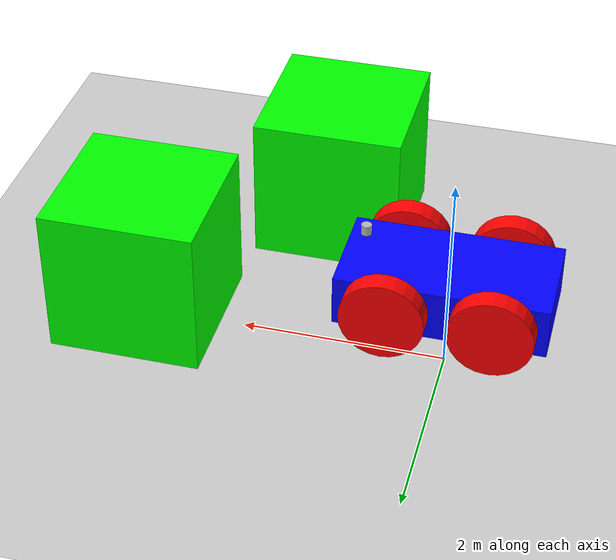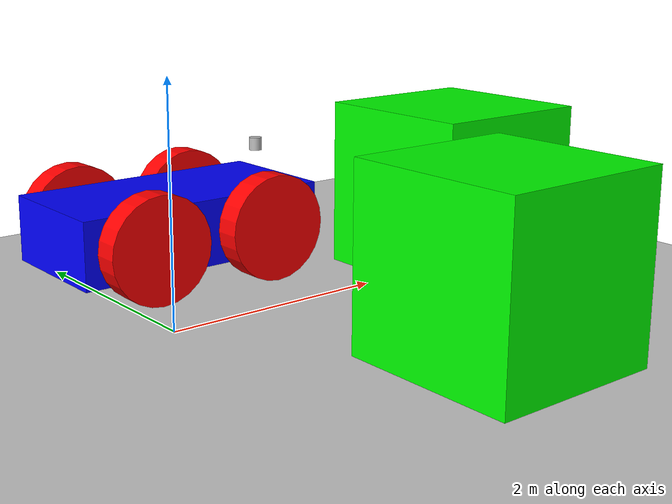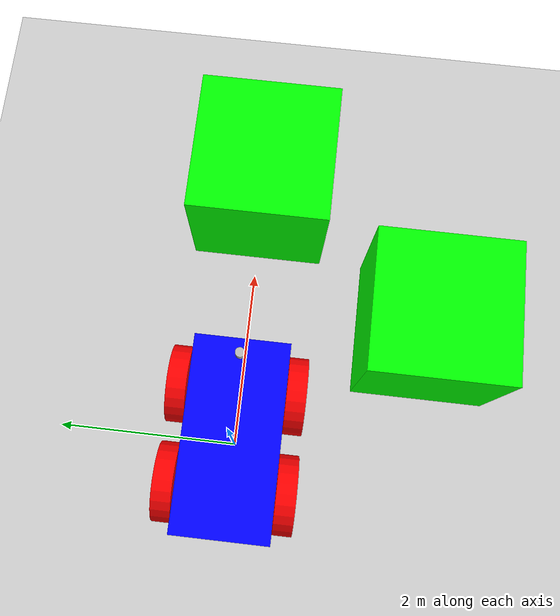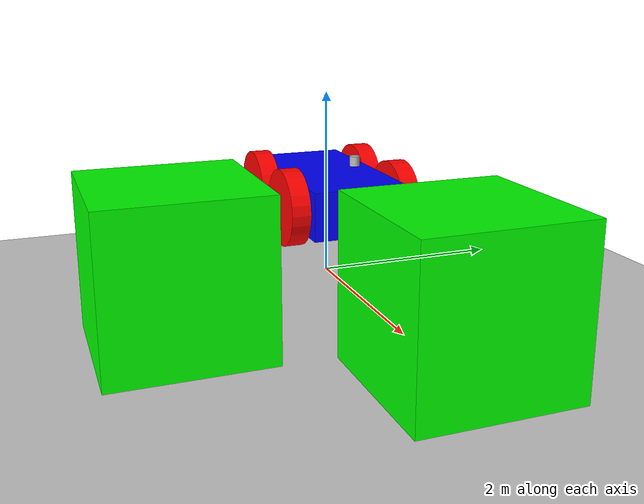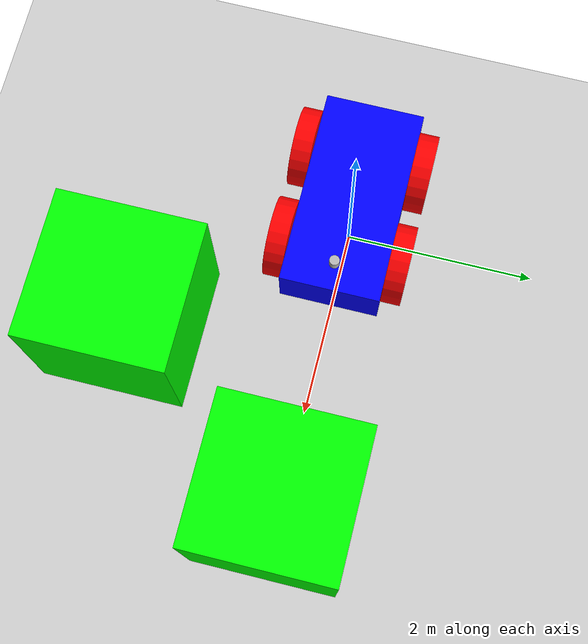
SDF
<?xml version="1.0" ?>
<sdf version="1.8">
    <world name="car_world">
        <physics name="1ms" type="ignored">
            <max_step_size>0.001</max_step_size>
            <real_time_factor>1.0</real_time_factor>
        </physics>
        <plugin filename="gz-sim-physics-system" name="gz::sim::systems::Physics"/>
        <plugin filename="gz-sim-user-commands-system" name="gz::sim::systems::UserCommands"/>
        <plugin filename="gz-sim-scene-broadcaster-system" name="gz::sim::systems::SceneBroadcaster"/>
        <plugin filename="gz-sim-sensors-system" name="gz::sim::systems::Sensors">
            <render_engine>ogre2</render_engine>
        </plugin>

        <light type="directional" name="sun">
            <cast_shadows>true</cast_shadows>
            <pose>0 0 10 0 0 0</pose>
            <diffuse>0.8 0.8 0.8 1</diffuse>
            <specular>0.2 0.2 0.2 1</specular>
            <direction>-0.5 0.1 -0.9</direction>
        </light>

        <model name="ground_plane">
            <static>true</static>
            <link name="link">
                <collision name="collision">
                    <geometry><plane><normal>0 0 1</normal></plane></geometry>
                </collision>
                <visual name="visual">
                    <geometry><plane><normal>0 0 1</normal><size>100 100</size></plane></geometry>
                    <material><ambient>0.8 0.8 0.8 1</ambient><diffuse>0.8 0.8 0.8 1</diffuse></material>
                </visual>
            </link>
        </model>

        <model name='robot_4wd' canonical_link='chassis'>
            <pose relative_to='world'>0 0 0.5 0 0 0</pose>

            <link name='chassis'>
                <pose relative_to='__model__'>0 0 0.4 0 0 0</pose>
                <inertial>
                    <mass>1.14395</mass>
                    <inertia>
                        <ixx>0.095329</ixx><iyy>0.381317</iyy><izz>0.476646</izz>
                    </inertia>
                </inertial>
                <visual name='visual'>
                    <geometry><box><size>2.0 1.0 0.5</size></box></geometry>
                    <material><ambient>0.0 0.0 1.0 1</ambient><diffuse>0.0 0.0 1.0 1</diffuse></material>
                </visual>
                <collision name='collision'>
                    <geometry><box><size>2.0 1.0 0.5</size></box></geometry>
                </collision>
            </link>

            <link name='left_front_wheel'>
                <pose relative_to="chassis">0.5 0.6 0 -1.5707 0 0</pose>
                <inertial>
                    <mass>1</mass>
                    <inertia><ixx>0.043333</ixx><iyy>0.043333</iyy><izz>0.08</izz></inertia>
                </inertial>
                <visual name='visual'>
                    <geometry><cylinder><radius>0.4</radius><length>0.2</length></cylinder></geometry>
                    <material><ambient>1.0 0.0 0.0 1</ambient><diffuse>1.0 0.0 0.0 1</diffuse></material>
                </visual>
                <collision name='collision'>
                    <geometry><cylinder><radius>0.4</radius><length>0.2</length></cylinder></geometry>
                </collision>
            </link>

            <link name='right_front_wheel'>
                <pose relative_to="chassis">0.5 -0.6 0 -1.5707 0 0</pose>
                <inertial>
                    <mass>1</mass>
                    <inertia><ixx>0.043333</ixx><iyy>0.043333</iyy><izz>0.08</izz></inertia>
                </inertial>
                <visual name='visual'>
                    <geometry><cylinder><radius>0.4</radius><length>0.2</length></cylinder></geometry>
                    <material><ambient>1.0 0.0 0.0 1</ambient><diffuse>1.0 0.0 0.0 1</diffuse></material>
                </visual>
                <collision name='collision'>
                    <geometry><cylinder><radius>0.4</radius><length>0.2</length></cylinder></geometry>
                </collision>
            </link>

            <link name='left_rear_wheel'>
                <pose relative_to="chassis">-0.5 0.6 0 -1.5707 0 0</pose>
                <inertial>
                    <mass>1</mass>
                    <inertia><ixx>0.043333</ixx><iyy>0.043333</iyy><izz>0.08</izz></inertia>
                </inertial>
                <visual name='visual'>
                    <geometry><cylinder><radius>0.4</radius><length>0.2</length></cylinder></geometry>
                    <material><ambient>1.0 0.0 0.0 1</ambient><diffuse>1.0 0.0 0.0 1</diffuse></material>
                </visual>
                <collision name='collision'>
                    <geometry><cylinder><radius>0.4</radius><length>0.2</length></cylinder></geometry>
                </collision>
            </link>

            <link name='right_rear_wheel'>
                <pose relative_to="chassis">-0.5 -0.6 0 -1.5707 0 0</pose>
                <inertial>
                    <mass>1</mass>
                    <inertia><ixx>0.043333</ixx><iyy>0.043333</iyy><izz>0.08</izz></inertia>
                </inertial>
                <visual name='visual'>
                    <geometry><cylinder><radius>0.4</radius><length>0.2</length></cylinder></geometry>
                    <material><ambient>1.0 0.0 0.0 1</ambient><diffuse>1.0 0.0 0.0 1</diffuse></material>
                </visual>
                <collision name='collision'>
                    <geometry><cylinder><radius>0.4</radius><length>0.2</length></cylinder></geometry>
                </collision>
            </link>

            <joint name='left_front_wheel_joint' type='revolute'>
                <pose relative_to='left_front_wheel'/>
                <parent>chassis</parent><child>left_front_wheel</child>
                <axis><xyz expressed_in='__model__'>0 1 0</xyz><limit><lower>-1.79e+308</lower><upper>1.79e+308</upper></limit></axis>
            </joint>

            <joint name='right_front_wheel_joint' type='revolute'>
                <pose relative_to='right_front_wheel'/>
                <parent>chassis</parent><child>right_front_wheel</child>
                <axis><xyz expressed_in='__model__'>0 1 0</xyz><limit><lower>-1.79e+308</lower><upper>1.79e+308</upper></limit></axis>
            </joint>

            <joint name='left_rear_wheel_joint' type='revolute'>
                <pose relative_to='left_rear_wheel'/>
                <parent>chassis</parent><child>left_rear_wheel</child>
                <axis><xyz expressed_in='__model__'>0 1 0</xyz><limit><lower>-1.79e+308</lower><upper>1.79e+308</upper></limit></axis>
            </joint>

            <joint name='right_rear_wheel_joint' type='revolute'>
                <pose relative_to='right_rear_wheel'/>
                <parent>chassis</parent><child>right_rear_wheel</child>
                <axis><xyz expressed_in='__model__'>0 1 0</xyz><limit><lower>-1.79e+308</lower><upper>1.79e+308</upper></limit></axis>
            </joint>

            <link name='lidar_link'>
                <pose relative_to='chassis'>0.8 0 0.5 0 0 0</pose>
                <inertial>
                    <mass>0.1</mass>
                    <inertia><ixx>0.000166</ixx><iyy>0.000166</iyy><izz>0.000166</izz></inertia>
                </inertial>
                <visual name='visual'>
                    <geometry><cylinder><radius>0.05</radius><length>0.1</length></cylinder></geometry>
                </visual>
                <sensor name='gpu_lidar' type='gpu_lidar'>
                    <topic>lidar</topic>
                    <update_rate>10</update_rate>
                    <lidar>
                        <scan><horizontal><samples>640</samples><resolution>1</resolution><min_angle>-1.396</min_angle><max_angle>1.396</max_angle></horizontal></scan>
                        <range><min>0.08</min><max>10.0</max></range>
                    </lidar>
                    <visualize>true</visualize>
                </sensor>
            </link>

            <joint name='lidar_joint' type='fixed'>
                <parent>chassis</parent>
                <child>lidar_link</child>
            </joint>

            <plugin filename="gz-sim-diff-drive-system" name="gz::sim::systems::DiffDrive">
                <left_joint>left_front_wheel_joint</left_joint>
                <left_joint>left_rear_wheel_joint</left_joint>
                <right_joint>right_front_wheel_joint</right_joint>
                <right_joint>right_rear_wheel_joint</right_joint>
                <wheel_separation>1.2</wheel_separation>
                <wheel_radius>0.4</wheel_radius>
                <topic>cmd_vel</topic>
            </plugin>
        </model>

        <model name="box_obstacle_1">
    <pose>3.0 0 0.75 0 0 0</pose>
    <link name="box_link">
        <visual name="visual">
            <geometry><box><size>1.5 1.5 1.5</size></box></geometry>
            <material><ambient>0 1 0 1</ambient><diffuse>0 1 0 1</diffuse></material>
        </visual>
        <collision name="collision">
            <geometry><box><size>1.5 1.5 1.5</size></box></geometry>
        </collision>
            </link>
            </model>

        <model name="box_obstacle_2">
    <pose>1.5 -2.0 0.75 0 0 0</pose>
    <link name="box_link">
        <visual name="visual">
            <geometry><box><size>1.5 1.5 1.5</size></box></geometry>
            <material><ambient>0 1 0 1</ambient><diffuse>0 1 0 1</diffuse></material>
        </visual>
        <collision name="collision">
            <geometry><box><size>1.5 1.5 1.5</size></box></geometry>
        </collision>
    </link>
</model>
    </world>
</sdf>
